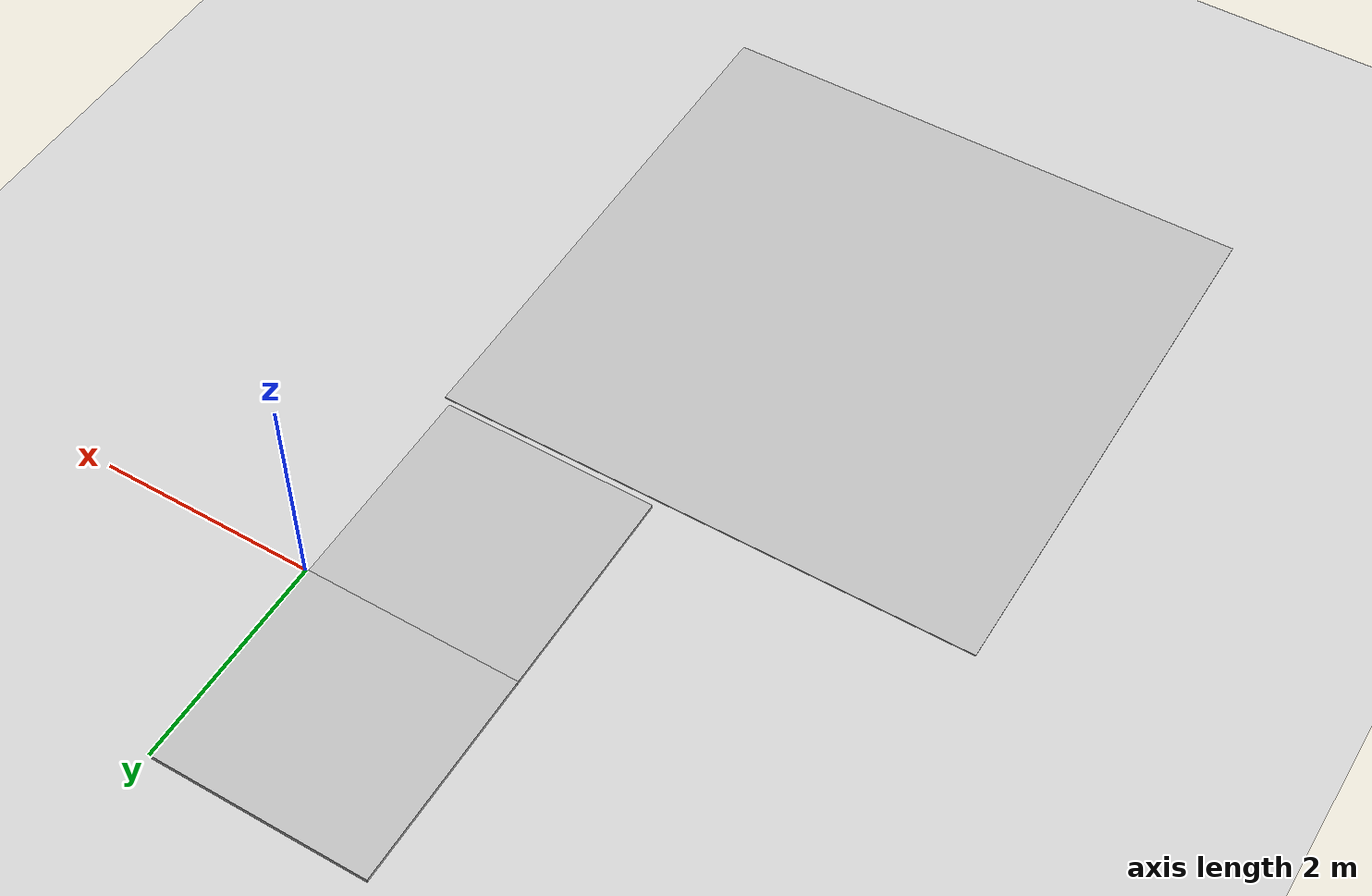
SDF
<sdf version="1.7">
 <world name="default">
  <light name="sun" type="directional">
   <pose>0 0 10 0 -0 0</pose>
   <diffuse>0.8 0.8 0.8 1</diffuse>
   <specular>0.2 0.2 0.2 1</specular>
   <attenuation>
    <range>1000</range>
    <constant>0.9</constant>
    <linear>0.01</linear>
    <quadratic>0.001</quadratic>
   </attenuation>
   <direction>-0.5 0.1 -0.9</direction>
   <spot><inner_angle>0</inner_angle><outer_angle>0</outer_angle><falloff>0</falloff></spot>
  </light>
  <model name="ground_plane">
   <static>1</static>
   <link name="link">
    <collision name="collision">
     <geometry><plane><normal>0 0 1</normal><size>100 100</size></plane></geometry>
     <surface><friction><ode><mu>100</mu><mu2>50</mu2></ode></friction></surface>
    </collision>
    <visual name="visual">
     <cast_shadows>0</cast_shadows>
     <geometry><plane><normal>0 0 1</normal><size>100 100</size></plane></geometry>
     <material>
      <script><uri>file://media/materials/scripts/gazebo.material</uri><name>Gazebo/Grey</name></script>
     </material>
    </visual>
   </link>
  </model>
  <gravity>0 0 -9.8</gravity>
  <magnetic_field>6e-06 2.3e-05 -4.2e-05</magnetic_field>
  <atmosphere type="adiabatic"/>
  <physics type="ode">
   <max_step_size>0.001</max_step_size>
   <real_time_factor>1</real_time_factor>
   <real_time_update_rate>1000</real_time_update_rate>
  </physics>
  <scene><ambient>0.4 0.4 0.4 1</ambient><background>0.7 0.7 0.7 1</background><shadows>1</shadows></scene>
  <spherical_coordinates>
   <surface_model>EARTH_WGS84</surface_model>
   <latitude_deg>0</latitude_deg>
   <longitude_deg>0</longitude_deg>
   <elevation>0</elevation>
   <heading_deg>0</heading_deg>
  </spherical_coordinates>
  <model name="Estrella_azul">
   <static>1</static>
   <link name="link">
    <visual name="visual">
     <geometry><mesh><uri>model://Estrella_azul/meshes/Marker4.dae</uri><scale>4 4 4</scale></mesh></geometry>
    </visual>
   </link>
   <pose>-0.037464 -0.970547 0.018304 3.14159 -1.56199 3.14159</pose>
  </model>
  <model name="estrella_naranja">
   <static>1</static>
   <link name="link">
    <visual name="visual">
     <geometry><mesh><uri>model://estrella_naranja/meshes/Marker5.dae</uri><scale>4 4 4</scale></mesh></geometry>
    </visual>
   </link>
   <pose>-0.037346 1.01125 0.020512 3.14159 -1.56265 3.14159</pose>
  </model>
  <model name="formas_geometricas">
   <static>1</static>
   <link name="link">
    <visual name="visual">
     <geometry>
      <mesh><uri>model://formas_geometricas/meshes/Marker1.dae</uri><scale>1 10 10</scale></mesh>
     </geometry>
    </visual>
   </link>
   <pose>0.049654 -4.53163 0.013549 0 -1.56859 0</pose>
  </model>
 </world>
</sdf>
